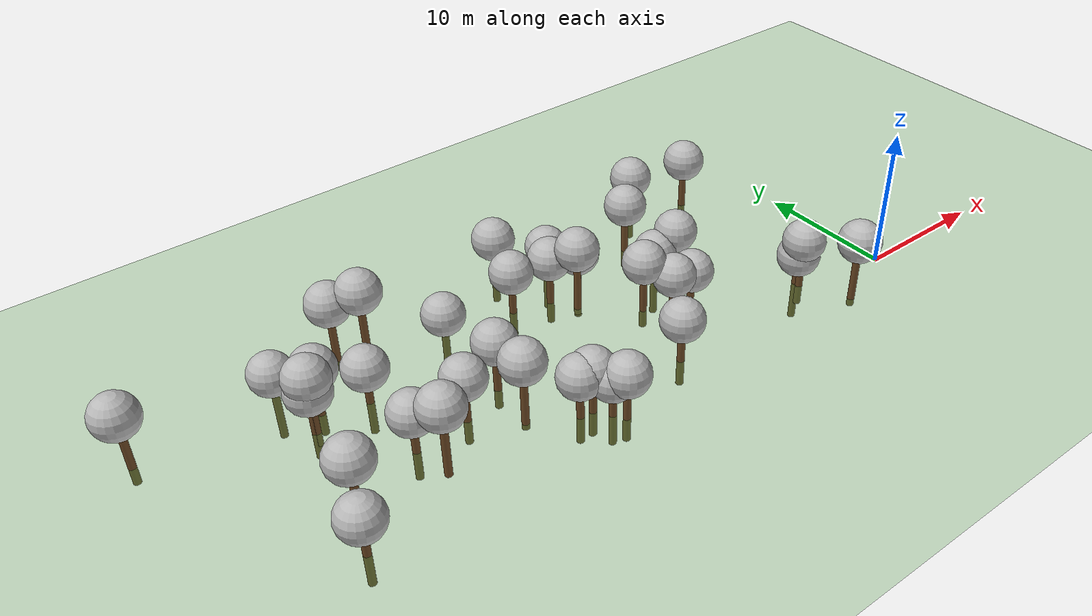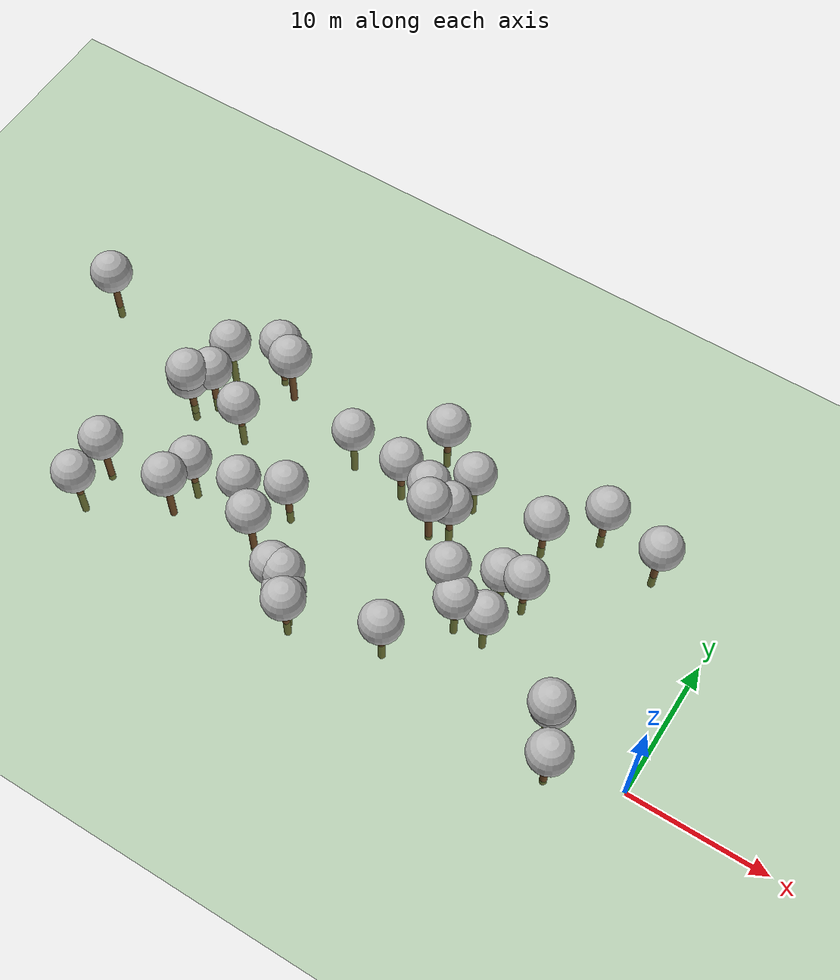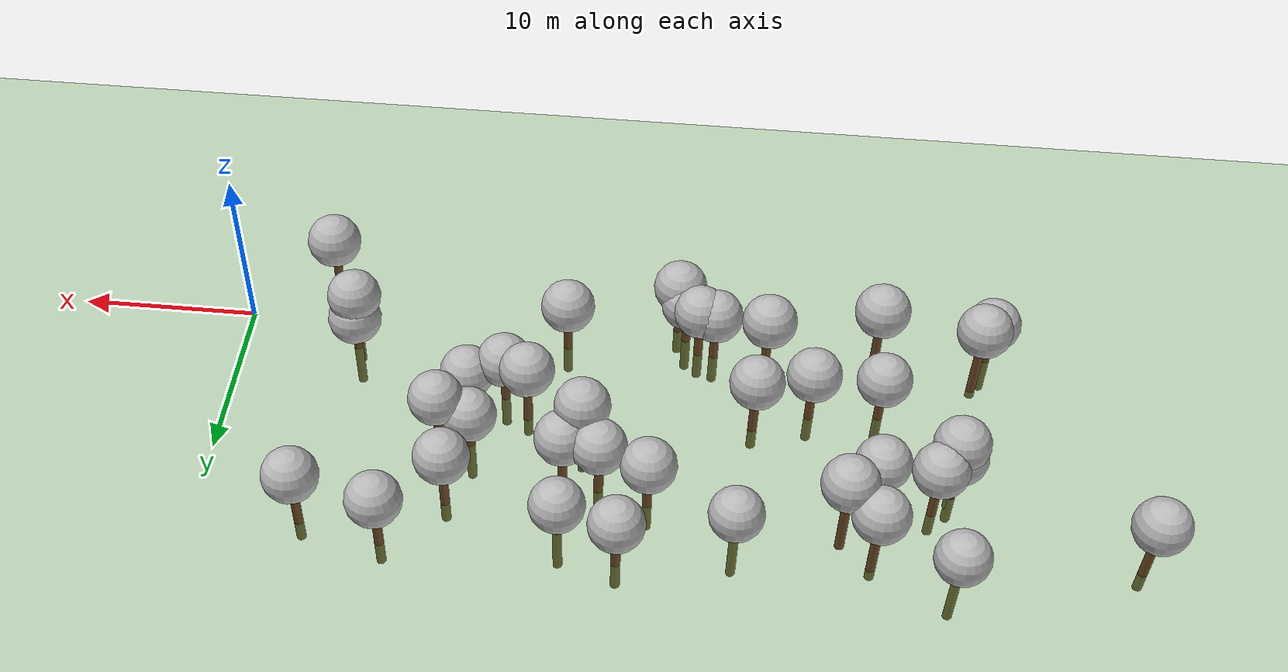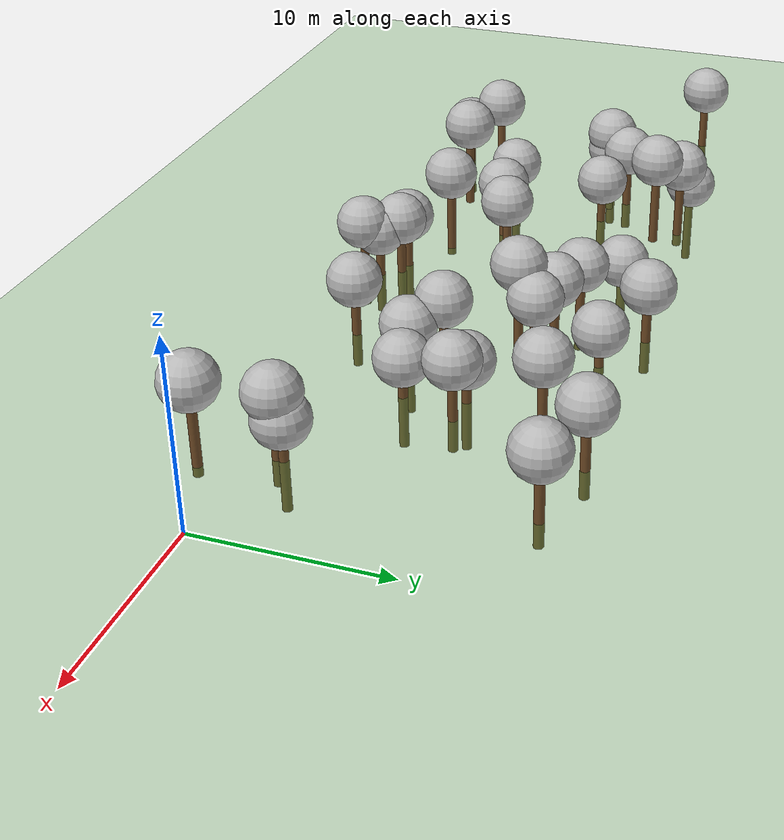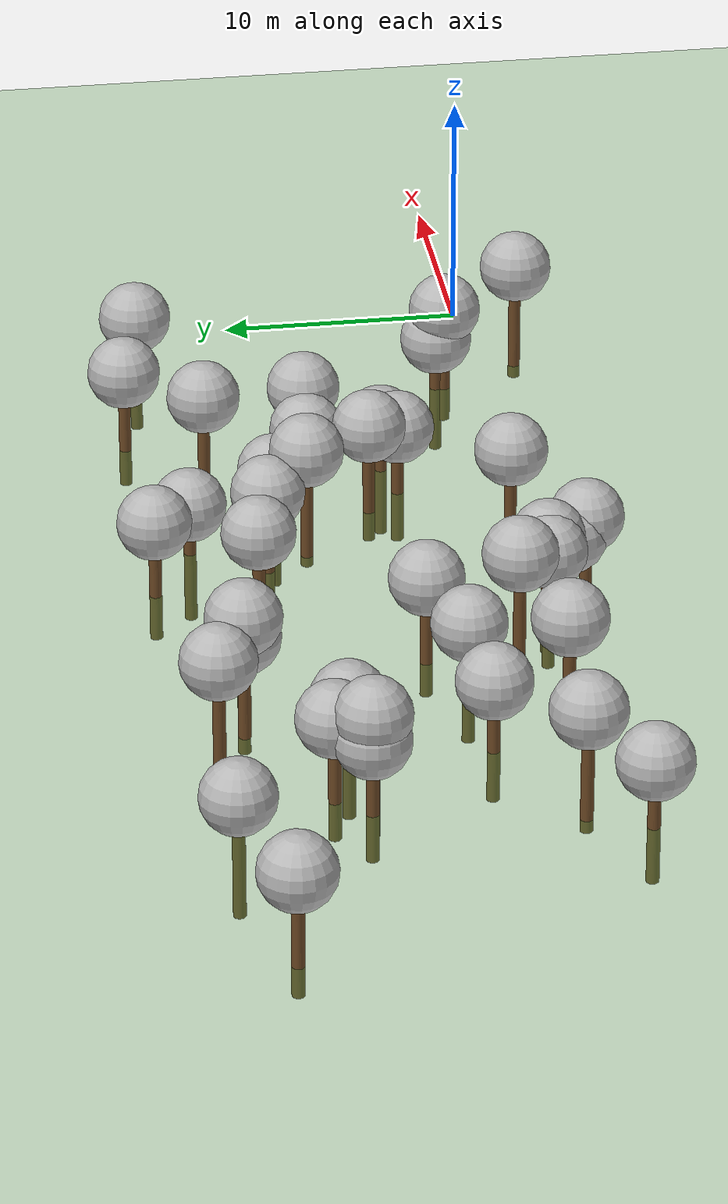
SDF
<sdf version="1.5">
 <world name="default">
  <model name="tree_simple498">
   <static>1</static>
   <link name="link">
    <pose>0 0 0.1 0 -0 0</pose>
    <collision name="collision_trunk">
     <pose>0 0 2 0 -0 0</pose>
     <geometry><cylinder><radius>0.25</radius><length>4</length></cylinder></geometry>
    </collision>
    <collision name="collision_treetop">
     <pose>0 0 5.2 0 -0 0</pose>
     <geometry><sphere><radius>1.5</radius></sphere></geometry>
    </collision>
    <visual name="trunk">
     <pose>0 0 2 0 -0 0</pose>
     <geometry><cylinder><radius>0.25</radius><length>4</length></cylinder></geometry>
     <material>
      <script>
       <uri>model://tree_simple/scripts</uri>
       <uri>model://tree_simple/materials/textures</uri>
       <name>TreeSimple/Trunk</name>
      </script>
     </material>
    </visual>
    <visual name="treetop">
     <pose>0 0 5.2 0 -0 0</pose>
     <geometry><sphere><radius>1.5</radius></sphere></geometry>
     <material>
      <script>
       <uri>model://tree_simple/scripts</uri>
       <uri>model://tree_simple/materials/textures</uri>
       <name>TreeSimple/Treetop</name>
      </script>
     </material>
    </visual>
   </link>
   <pose>-20.062069779 9.09254194943 -0.5727137692708224 0 -0 0</pose>
  </model>
  <model name="tree_simple488">
   <static>1</static>
   <link name="link">
    <pose>0 0 0.1 0 -0 0</pose>
    <collision name="collision_trunk">
     <pose>0 0 2 0 -0 0</pose>
     <geometry><cylinder><radius>0.25</radius><length>4</length></cylinder></geometry>
    </collision>
    <collision name="collision_treetop">
     <pose>0 0 5.2 0 -0 0</pose>
     <geometry><sphere><radius>1.5</radius></sphere></geometry>
    </collision>
    <visual name="trunk">
     <pose>0 0 2 0 -0 0</pose>
     <geometry><cylinder><radius>0.25</radius><length>4</length></cylinder></geometry>
     <material>
      <script>
       <uri>model://tree_simple/scripts</uri>
       <uri>model://tree_simple/materials/textures</uri>
       <name>TreeSimple/Trunk</name>
      </script>
     </material>
    </visual>
    <visual name="treetop">
     <pose>0 0 5.2 0 -0 0</pose>
     <geometry><sphere><radius>1.5</radius></sphere></geometry>
     <material>
      <script>
       <uri>model://tree_simple/scripts</uri>
       <uri>model://tree_simple/materials/textures</uri>
       <name>TreeSimple/Treetop</name>
      </script>
     </material>
    </visual>
   </link>
   <pose>-13.1215818691 12.435953241 -1.5400964836160544 0 -0 0</pose>
  </model>
  <model name="tree_simple460">
   <static>1</static>
   <link name="link">
    <pose>0 0 0.1 0 -0 0</pose>
    <collision name="collision_trunk">
     <pose>0 0 2 0 -0 0</pose>
     <geometry><cylinder><radius>0.25</radius><length>4</length></cylinder></geometry>
    </collision>
    <collision name="collision_treetop">
     <pose>0 0 5.2 0 -0 0</pose>
     <geometry><sphere><radius>1.5</radius></sphere></geometry>
    </collision>
    <visual name="trunk">
     <pose>0 0 2 0 -0 0</pose>
     <geometry><cylinder><radius>0.25</radius><length>4</length></cylinder></geometry>
     <material>
      <script>
       <uri>model://tree_simple/scripts</uri>
       <uri>model://tree_simple/materials/textures</uri>
       <name>TreeSimple/Trunk</name>
      </script>
     </material>
    </visual>
    <visual name="treetop">
     <pose>0 0 5.2 0 -0 0</pose>
     <geometry><sphere><radius>1.5</radius></sphere></geometry>
     <material>
      <script>
       <uri>model://tree_simple/scripts</uri>
       <uri>model://tree_simple/materials/textures</uri>
       <name>TreeSimple/Treetop</name>
      </script>
     </material>
    </visual>
   </link>
   <pose>-19.1263542494 10.273291852 -1.899627854762024 0 -0 0</pose>
  </model>
  <model name="tree_simple455">
   <static>1</static>
   <link name="link">
    <pose>0 0 0.1 0 -0 0</pose>
    <collision name="collision_trunk">
     <pose>0 0 2 0 -0 0</pose>
     <geometry><cylinder><radius>0.25</radius><length>4</length></cylinder></geometry>
    </collision>
    <collision name="collision_treetop">
     <pose>0 0 5.2 0 -0 0</pose>
     <geometry><sphere><radius>1.5</radius></sphere></geometry>
    </collision>
    <visual name="trunk">
     <pose>0 0 2 0 -0 0</pose>
     <geometry><cylinder><radius>0.25</radius><length>4</length></cylinder></geometry>
     <material>
      <script>
       <uri>model://tree_simple/scripts</uri>
       <uri>model://tree_simple/materials/textures</uri>
       <name>TreeSimple/Trunk</name>
      </script>
     </material>
    </visual>
    <visual name="treetop">
     <pose>0 0 5.2 0 -0 0</pose>
     <geometry><sphere><radius>1.5</radius></sphere></geometry>
     <material>
      <script>
       <uri>model://tree_simple/scripts</uri>
       <uri>model://tree_simple/materials/textures</uri>
       <name>TreeSimple/Treetop</name>
      </script>
     </material>
    </visual>
   </link>
   <pose>-32.1346913749 4.45623468988 -1.947715584335513 0 -0 0</pose>
  </model>
  <model name="tree_simple453">
   <static>1</static>
   <link name="link">
    <pose>0 0 0.1 0 -0 0</pose>
    <collision name="collision_trunk">
     <pose>0 0 2 0 -0 0</pose>
     <geometry><cylinder><radius>0.25</radius><length>4</length></cylinder></geometry>
    </collision>
    <collision name="collision_treetop">
     <pose>0 0 5.2 0 -0 0</pose>
     <geometry><sphere><radius>1.5</radius></sphere></geometry>
    </collision>
    <visual name="trunk">
     <pose>0 0 2 0 -0 0</pose>
     <geometry><cylinder><radius>0.25</radius><length>4</length></cylinder></geometry>
     <material>
      <script>
       <uri>model://tree_simple/scripts</uri>
       <uri>model://tree_simple/materials/textures</uri>
       <name>TreeSimple/Trunk</name>
      </script>
     </material>
    </visual>
    <visual name="treetop">
     <pose>0 0 5.2 0 -0 0</pose>
     <geometry><sphere><radius>1.5</radius></sphere></geometry>
     <material>
      <script>
       <uri>model://tree_simple/scripts</uri>
       <uri>model://tree_simple/materials/textures</uri>
       <name>TreeSimple/Treetop</name>
      </script>
     </material>
    </visual>
   </link>
   <pose>-12.135251061 8.19022164755 -1.936816225302408 0 -0 0</pose>
  </model>
  <model name="tree_simple448">
   <static>1</static>
   <link name="link">
    <pose>0 0 0.1 0 -0 0</pose>
    <collision name="collision_trunk">
     <pose>0 0 2 0 -0 0</pose>
     <geometry><cylinder><radius>0.25</radius><length>4</length></cylinder></geometry>
    </collision>
    <collision name="collision_treetop">
     <pose>0 0 5.2 0 -0 0</pose>
     <geometry><sphere><radius>1.5</radius></sphere></geometry>
    </collision>
    <visual name="trunk">
     <pose>0 0 2 0 -0 0</pose>
     <geometry><cylinder><radius>0.25</radius><length>4</length></cylinder></geometry>
     <material>
      <script>
       <uri>model://tree_simple/scripts</uri>
       <uri>model://tree_simple/materials/textures</uri>
       <name>TreeSimple/Trunk</name>
      </script>
     </material>
    </visual>
    <visual name="treetop">
     <pose>0 0 5.2 0 -0 0</pose>
     <geometry><sphere><radius>1.5</radius></sphere></geometry>
     <material>
      <script>
       <uri>model://tree_simple/scripts</uri>
       <uri>model://tree_simple/materials/textures</uri>
       <name>TreeSimple/Treetop</name>
      </script>
     </material>
    </visual>
   </link>
   <pose>-24.5519753109 -1.42546954192 -1.90080554179526 0 -0 0</pose>
  </model>
  <model name="tree_simple444">
   <static>1</static>
   <link name="link">
    <pose>0 0 0.1 0 -0 0</pose>
    <collision name="collision_trunk">
     <pose>0 0 2 0 -0 0</pose>
     <geometry><cylinder><radius>0.25</radius><length>4</length></cylinder></geometry>
    </collision>
    <collision name="collision_treetop">
     <pose>0 0 5.2 0 -0 0</pose>
     <geometry><sphere><radius>1.5</radius></sphere></geometry>
    </collision>
    <visual name="trunk">
     <pose>0 0 2 0 -0 0</pose>
     <geometry><cylinder><radius>0.25</radius><length>4</length></cylinder></geometry>
     <material>
      <script>
       <uri>model://tree_simple/scripts</uri>
       <uri>model://tree_simple/materials/textures</uri>
       <name>TreeSimple/Trunk</name>
      </script>
     </material>
    </visual>
    <visual name="treetop">
     <pose>0 0 5.2 0 -0 0</pose>
     <geometry><sphere><radius>1.5</radius></sphere></geometry>
     <material>
      <script>
       <uri>model://tree_simple/scripts</uri>
       <uri>model://tree_simple/materials/textures</uri>
       <name>TreeSimple/Treetop</name>
      </script>
     </material>
    </visual>
   </link>
   <pose>-23.7375888222 11.4825776361 -2.090950096863693 0 -0 0</pose>
  </model>
  <model name="tree_simple437">
   <static>1</static>
   <link name="link">
    <pose>0 0 0.1 0 -0 0</pose>
    <collision name="collision_trunk">
     <pose>0 0 2 0 -0 0</pose>
     <geometry><cylinder><radius>0.25</radius><length>4</length></cylinder></geometry>
    </collision>
    <collision name="collision_treetop">
     <pose>0 0 5.2 0 -0 0</pose>
     <geometry><sphere><radius>1.5</radius></sphere></geometry>
    </collision>
    <visual name="trunk">
     <pose>0 0 2 0 -0 0</pose>
     <geometry><cylinder><radius>0.25</radius><length>4</length></cylinder></geometry>
     <material>
      <script>
       <uri>model://tree_simple/scripts</uri>
       <uri>model://tree_simple/materials/textures</uri>
       <name>TreeSimple/Trunk</name>
      </script>
     </material>
    </visual>
    <visual name="treetop">
     <pose>0 0 5.2 0 -0 0</pose>
     <geometry><sphere><radius>1.5</radius></sphere></geometry>
     <material>
      <script>
       <uri>model://tree_simple/scripts</uri>
       <uri>model://tree_simple/materials/textures</uri>
       <name>TreeSimple/Treetop</name>
      </script>
     </material>
    </visual>
   </link>
   <pose>-39.7170299969 9.24665194356 -2.1444735147371587 0 -0 0</pose>
  </model>
  <model name="tree_simple424">
   <static>1</static>
   <link name="link">
    <pose>0 0 0.1 0 -0 0</pose>
    <collision name="collision_trunk">
     <pose>0 0 2 0 -0 0</pose>
     <geometry><cylinder><radius>0.25</radius><length>4</length></cylinder></geometry>
    </collision>
    <collision name="collision_treetop">
     <pose>0 0 5.2 0 -0 0</pose>
     <geometry><sphere><radius>1.5</radius></sphere></geometry>
    </collision>
    <visual name="trunk">
     <pose>0 0 2 0 -0 0</pose>
     <geometry><cylinder><radius>0.25</radius><length>4</length></cylinder></geometry>
     <material>
      <script>
       <uri>model://tree_simple/scripts</uri>
       <uri>model://tree_simple/materials/textures</uri>
       <name>TreeSimple/Trunk</name>
      </script>
     </material>
    </visual>
    <visual name="treetop">
     <pose>0 0 5.2 0 -0 0</pose>
     <geometry><sphere><radius>1.5</radius></sphere></geometry>
     <material>
      <script>
       <uri>model://tree_simple/scripts</uri>
       <uri>model://tree_simple/materials/textures</uri>
       <name>TreeSimple/Treetop</name>
      </script>
     </material>
    </visual>
   </link>
   <pose>-16.7770993139 6.12178979124 -1.4388467950934207 0 -0 0</pose>
  </model>
  <model name="tree_simple393">
   <static>1</static>
   <link name="link">
    <pose>0 0 0.1 0 -0 0</pose>
    <collision name="collision_trunk">
     <pose>0 0 2 0 -0 0</pose>
     <geometry><cylinder><radius>0.25</radius><length>4</length></cylinder></geometry>
    </collision>
    <collision name="collision_treetop">
     <pose>0 0 5.2 0 -0 0</pose>
     <geometry><sphere><radius>1.5</radius></sphere></geometry>
    </collision>
    <visual name="trunk">
     <pose>0 0 2 0 -0 0</pose>
     <geometry><cylinder><radius>0.25</radius><length>4</length></cylinder></geometry>
     <material>
      <script>
       <uri>model://tree_simple/scripts</uri>
       <uri>model://tree_simple/materials/textures</uri>
       <name>TreeSimple/Trunk</name>
      </script>
     </material>
    </visual>
    <visual name="treetop">
     <pose>0 0 5.2 0 -0 0</pose>
     <geometry><sphere><radius>1.5</radius></sphere></geometry>
     <material>
      <script>
       <uri>model://tree_simple/scripts</uri>
       <uri>model://tree_simple/materials/textures</uri>
       <name>TreeSimple/Treetop</name>
      </script>
     </material>
    </visual>
   </link>
   <pose>-19.2161378336 13.717868908 -3.142937712654496 0 -0 0</pose>
  </model>
  <model name="tree_simple383">
   <static>1</static>
   <link name="link">
    <pose>0 0 0.1 0 -0 0</pose>
    <collision name="collision_trunk">
     <pose>0 0 2 0 -0 0</pose>
     <geometry><cylinder><radius>0.25</radius><length>4</length></cylinder></geometry>
    </collision>
    <collision name="collision_treetop">
     <pose>0 0 5.2 0 -0 0</pose>
     <geometry><sphere><radius>1.5</radius></sphere></geometry>
    </collision>
    <visual name="trunk">
     <pose>0 0 2 0 -0 0</pose>
     <geometry><cylinder><radius>0.25</radius><length>4</length></cylinder></geometry>
     <material>
      <script>
       <uri>model://tree_simple/scripts</uri>
       <uri>model://tree_simple/materials/textures</uri>
       <name>TreeSimple/Trunk</name>
      </script>
     </material>
    </visual>
    <visual name="treetop">
     <pose>0 0 5.2 0 -0 0</pose>
     <geometry><sphere><radius>1.5</radius></sphere></geometry>
     <material>
      <script>
       <uri>model://tree_simple/scripts</uri>
       <uri>model://tree_simple/materials/textures</uri>
       <name>TreeSimple/Treetop</name>
      </script>
     </material>
    </visual>
   </link>
   <pose>-39.6589333601 9.20891740709 -1.109755845795116 0 -0 0</pose>
  </model>
  <model name="tree_simple360">
   <static>1</static>
   <link name="link">
    <pose>0 0 0.1 0 -0 0</pose>
    <collision name="collision_trunk">
     <pose>0 0 2 0 -0 0</pose>
     <geometry><cylinder><radius>0.25</radius><length>4</length></cylinder></geometry>
    </collision>
    <collision name="collision_treetop">
     <pose>0 0 5.2 0 -0 0</pose>
     <geometry><sphere><radius>1.5</radius></sphere></geometry>
    </collision>
    <visual name="trunk">
     <pose>0 0 2 0 -0 0</pose>
     <geometry><cylinder><radius>0.25</radius><length>4</length></cylinder></geometry>
     <material>
      <script>
       <uri>model://tree_simple/scripts</uri>
       <uri>model://tree_simple/materials/textures</uri>
       <name>TreeSimple/Trunk</name>
      </script>
     </material>
    </visual>
    <visual name="treetop">
     <pose>0 0 5.2 0 -0 0</pose>
     <geometry><sphere><radius>1.5</radius></sphere></geometry>
     <material>
      <script>
       <uri>model://tree_simple/scripts</uri>
       <uri>model://tree_simple/materials/textures</uri>
       <name>TreeSimple/Treetop</name>
      </script>
     </material>
    </visual>
   </link>
   <pose>-13.8761955988 8.30702560736 -2.928211109196675 0 -0 0</pose>
  </model>
  <model name="tree_simple338">
   <static>1</static>
   <link name="link">
    <pose>0 0 0.1 0 -0 0</pose>
    <collision name="collision_trunk">
     <pose>0 0 2 0 -0 0</pose>
     <geometry><cylinder><radius>0.25</radius><length>4</length></cylinder></geometry>
    </collision>
    <collision name="collision_treetop">
     <pose>0 0 5.2 0 -0 0</pose>
     <geometry><sphere><radius>1.5</radius></sphere></geometry>
    </collision>
    <visual name="trunk">
     <pose>0 0 2 0 -0 0</pose>
     <geometry><cylinder><radius>0.25</radius><length>4</length></cylinder></geometry>
     <material>
      <script>
       <uri>model://tree_simple/scripts</uri>
       <uri>model://tree_simple/materials/textures</uri>
       <name>TreeSimple/Trunk</name>
      </script>
     </material>
    </visual>
    <visual name="treetop">
     <pose>0 0 5.2 0 -0 0</pose>
     <geometry><sphere><radius>1.5</radius></sphere></geometry>
     <material>
      <script>
       <uri>model://tree_simple/scripts</uri>
       <uri>model://tree_simple/materials/textures</uri>
       <name>TreeSimple/Treetop</name>
      </script>
     </material>
    </visual>
   </link>
   <pose>-22.4236352143 15.4465495723 -2.061868776338593 0 -0 0</pose>
  </model>
  <model name="tree_simple333">
   <static>1</static>
   <link name="link">
    <pose>0 0 0.1 0 -0 0</pose>
    <collision name="collision_trunk">
     <pose>0 0 2 0 -0 0</pose>
     <geometry><cylinder><radius>0.25</radius><length>4</length></cylinder></geometry>
    </collision>
    <collision name="collision_treetop">
     <pose>0 0 5.2 0 -0 0</pose>
     <geometry><sphere><radius>1.5</radius></sphere></geometry>
    </collision>
    <visual name="trunk">
     <pose>0 0 2 0 -0 0</pose>
     <geometry><cylinder><radius>0.25</radius><length>4</length></cylinder></geometry>
     <material>
      <script>
       <uri>model://tree_simple/scripts</uri>
       <uri>model://tree_simple/materials/textures</uri>
       <name>TreeSimple/Trunk</name>
      </script>
     </material>
    </visual>
    <visual name="treetop">
     <pose>0 0 5.2 0 -0 0</pose>
     <geometry><sphere><radius>1.5</radius></sphere></geometry>
     <material>
      <script>
       <uri>model://tree_simple/scripts</uri>
       <uri>model://tree_simple/materials/textures</uri>
       <name>TreeSimple/Treetop</name>
      </script>
     </material>
    </visual>
   </link>
   <pose>-39.9457212117 14.2708629915 -4.0 0 -0 0</pose>
  </model>
  <model name="tree_simple289">
   <static>1</static>
   <link name="link">
    <pose>0 0 0.1 0 -0 0</pose>
    <collision name="collision_trunk">
     <pose>0 0 2 0 -0 0</pose>
     <geometry><cylinder><radius>0.25</radius><length>4</length></cylinder></geometry>
    </collision>
    <collision name="collision_treetop">
     <pose>0 0 5.2 0 -0 0</pose>
     <geometry><sphere><radius>1.5</radius></sphere></geometry>
    </collision>
    <visual name="trunk">
     <pose>0 0 2 0 -0 0</pose>
     <geometry><cylinder><radius>0.25</radius><length>4</length></cylinder></geometry>
     <material>
      <script>
       <uri>model://tree_simple/scripts</uri>
       <uri>model://tree_simple/materials/textures</uri>
       <name>TreeSimple/Trunk</name>
      </script>
     </material>
    </visual>
    <visual name="treetop">
     <pose>0 0 5.2 0 -0 0</pose>
     <geometry><sphere><radius>1.5</radius></sphere></geometry>
     <material>
      <script>
       <uri>model://tree_simple/scripts</uri>
       <uri>model://tree_simple/materials/textures</uri>
       <name>TreeSimple/Treetop</name>
      </script>
     </material>
    </visual>
   </link>
   <pose>-35.9302757768 4.10324936235 -2.2958135675298035 0 -0 0</pose>
  </model>
  <model name="tree_simple284">
   <static>1</static>
   <link name="link">
    <pose>0 0 0.1 0 -0 0</pose>
    <collision name="collision_trunk">
     <pose>0 0 2 0 -0 0</pose>
     <geometry><cylinder><radius>0.25</radius><length>4</length></cylinder></geometry>
    </collision>
    <collision name="collision_treetop">
     <pose>0 0 5.2 0 -0 0</pose>
     <geometry><sphere><radius>1.5</radius></sphere></geometry>
    </collision>
    <visual name="trunk">
     <pose>0 0 2 0 -0 0</pose>
     <geometry><cylinder><radius>0.25</radius><length>4</length></cylinder></geometry>
     <material>
      <script>
       <uri>model://tree_simple/scripts</uri>
       <uri>model://tree_simple/materials/textures</uri>
       <name>TreeSimple/Trunk</name>
      </script>
     </material>
    </visual>
    <visual name="treetop">
     <pose>0 0 5.2 0 -0 0</pose>
     <geometry><sphere><radius>1.5</radius></sphere></geometry>
     <material>
      <script>
       <uri>model://tree_simple/scripts</uri>
       <uri>model://tree_simple/materials/textures</uri>
       <name>TreeSimple/Treetop</name>
      </script>
     </material>
    </visual>
   </link>
   <pose>-18.3910783374 0.559962709575 -2.076386840364748 0 -0 0</pose>
  </model>
  <model name="tree_simple282">
   <static>1</static>
   <link name="link">
    <pose>0 0 0.1 0 -0 0</pose>
    <collision name="collision_trunk">
     <pose>0 0 2 0 -0 0</pose>
     <geometry><cylinder><radius>0.25</radius><length>4</length></cylinder></geometry>
    </collision>
    <collision name="collision_treetop">
     <pose>0 0 5.2 0 -0 0</pose>
     <geometry><sphere><radius>1.5</radius></sphere></geometry>
    </collision>
    <visual name="trunk">
     <pose>0 0 2 0 -0 0</pose>
     <geometry><cylinder><radius>0.25</radius><length>4</length></cylinder></geometry>
     <material>
      <script>
       <uri>model://tree_simple/scripts</uri>
       <uri>model://tree_simple/materials/textures</uri>
       <name>TreeSimple/Trunk</name>
      </script>
     </material>
    </visual>
    <visual name="treetop">
     <pose>0 0 5.2 0 -0 0</pose>
     <geometry><sphere><radius>1.5</radius></sphere></geometry>
     <material>
      <script>
       <uri>model://tree_simple/scripts</uri>
       <uri>model://tree_simple/materials/textures</uri>
       <name>TreeSimple/Treetop</name>
      </script>
     </material>
    </visual>
   </link>
   <pose>-10.116665752 15.3935200089 -1.744230696741878 0 -0 0</pose>
  </model>
  <model name="tree_simple279">
   <static>1</static>
   <link name="link">
    <pose>0 0 0.1 0 -0 0</pose>
    <collision name="collision_trunk">
     <pose>0 0 2 0 -0 0</pose>
     <geometry><cylinder><radius>0.25</radius><length>4</length></cylinder></geometry>
    </collision>
    <collision name="collision_treetop">
     <pose>0 0 5.2 0 -0 0</pose>
     <geometry><sphere><radius>1.5</radius></sphere></geometry>
    </collision>
    <visual name="trunk">
     <pose>0 0 2 0 -0 0</pose>
     <geometry><cylinder><radius>0.25</radius><length>4</length></cylinder></geometry>
     <material>
      <script>
       <uri>model://tree_simple/scripts</uri>
       <uri>model://tree_simple/materials/textures</uri>
       <name>TreeSimple/Trunk</name>
      </script>
     </material>
    </visual>
    <visual name="treetop">
     <pose>0 0 5.2 0 -0 0</pose>
     <geometry><sphere><radius>1.5</radius></sphere></geometry>
     <material>
      <script>
       <uri>model://tree_simple/scripts</uri>
       <uri>model://tree_simple/materials/textures</uri>
       <name>TreeSimple/Treetop</name>
      </script>
     </material>
    </visual>
   </link>
   <pose>-25.0449823603 -0.682470499347 -2.4700505996115525 0 -0 0</pose>
  </model>
  <model name="tree_simple252">
   <static>1</static>
   <link name="link">
    <pose>0 0 0.1 0 -0 0</pose>
    <collision name="collision_trunk">
     <pose>0 0 2 0 -0 0</pose>
     <geometry><cylinder><radius>0.25</radius><length>4</length></cylinder></geometry>
    </collision>
    <collision name="collision_treetop">
     <pose>0 0 5.2 0 -0 0</pose>
     <geometry><sphere><radius>1.5</radius></sphere></geometry>
    </collision>
    <visual name="trunk">
     <pose>0 0 2 0 -0 0</pose>
     <geometry><cylinder><radius>0.25</radius><length>4</length></cylinder></geometry>
     <material>
      <script>
       <uri>model://tree_simple/scripts</uri>
       <uri>model://tree_simple/materials/textures</uri>
       <name>TreeSimple/Trunk</name>
      </script>
     </material>
    </visual>
    <visual name="treetop">
     <pose>0 0 5.2 0 -0 0</pose>
     <geometry><sphere><radius>1.5</radius></sphere></geometry>
     <material>
      <script>
       <uri>model://tree_simple/scripts</uri>
       <uri>model://tree_simple/materials/textures</uri>
       <name>TreeSimple/Treetop</name>
      </script>
     </material>
    </visual>
   </link>
   <pose>-49.2857495086 13.2768548842 -1.3896792811846979 0 -0 0</pose>
  </model>
  <model name="tree_simple245">
   <static>1</static>
   <link name="link">
    <pose>0 0 0.1 0 -0 0</pose>
    <collision name="collision_trunk">
     <pose>0 0 2 0 -0 0</pose>
     <geometry><cylinder><radius>0.25</radius><length>4</length></cylinder></geometry>
    </collision>
    <collision name="collision_treetop">
     <pose>0 0 5.2 0 -0 0</pose>
     <geometry><sphere><radius>1.5</radius></sphere></geometry>
    </collision>
    <visual name="trunk">
     <pose>0 0 2 0 -0 0</pose>
     <geometry><cylinder><radius>0.25</radius><length>4</length></cylinder></geometry>
     <material>
      <script>
       <uri>model://tree_simple/scripts</uri>
       <uri>model://tree_simple/materials/textures</uri>
       <name>TreeSimple/Trunk</name>
      </script>
     </material>
    </visual>
    <visual name="treetop">
     <pose>0 0 5.2 0 -0 0</pose>
     <geometry><sphere><radius>1.5</radius></sphere></geometry>
     <material>
      <script>
       <uri>model://tree_simple/scripts</uri>
       <uri>model://tree_simple/materials/textures</uri>
       <name>TreeSimple/Treetop</name>
      </script>
     </material>
    </visual>
   </link>
   <pose>-25.7973722527 0.315231770046 -2.0016380816273003 0 -0 0</pose>
  </model>
  <model name="tree_simple231">
   <static>1</static>
   <link name="link">
    <pose>0 0 0.1 0 -0 0</pose>
    <collision name="collision_trunk">
     <pose>0 0 2 0 -0 0</pose>
     <geometry><cylinder><radius>0.25</radius><length>4</length></cylinder></geometry>
    </collision>
    <collision name="collision_treetop">
     <pose>0 0 5.2 0 -0 0</pose>
     <geometry><sphere><radius>1.5</radius></sphere></geometry>
    </collision>
    <visual name="trunk">
     <pose>0 0 2 0 -0 0</pose>
     <geometry><cylinder><radius>0.25</radius><length>4</length></cylinder></geometry>
     <material>
      <script>
       <uri>model://tree_simple/scripts</uri>
       <uri>model://tree_simple/materials/textures</uri>
       <name>TreeSimple/Trunk</name>
      </script>
     </material>
    </visual>
    <visual name="treetop">
     <pose>0 0 5.2 0 -0 0</pose>
     <geometry><sphere><radius>1.5</radius></sphere></geometry>
     <material>
      <script>
       <uri>model://tree_simple/scripts</uri>
       <uri>model://tree_simple/materials/textures</uri>
       <name>TreeSimple/Treetop</name>
      </script>
     </material>
    </visual>
   </link>
   <pose>-35.8338732543 9.59486776234 -2.6369395235057946 0 -0 0</pose>
  </model>
  <model name="tree_simple228">
   <static>1</static>
   <link name="link">
    <pose>0 0 0.1 0 -0 0</pose>
    <collision name="collision_trunk">
     <pose>0 0 2 0 -0 0</pose>
     <geometry><cylinder><radius>0.25</radius><length>4</length></cylinder></geometry>
    </collision>
    <collision name="collision_treetop">
     <pose>0 0 5.2 0 -0 0</pose>
     <geometry><sphere><radius>1.5</radius></sphere></geometry>
    </collision>
    <visual name="trunk">
     <pose>0 0 2 0 -0 0</pose>
     <geometry><cylinder><radius>0.25</radius><length>4</length></cylinder></geometry>
     <material>
      <script>
       <uri>model://tree_simple/scripts</uri>
       <uri>model://tree_simple/materials/textures</uri>
       <name>TreeSimple/Trunk</name>
      </script>
     </material>
    </visual>
    <visual name="treetop">
     <pose>0 0 5.2 0 -0 0</pose>
     <geometry><sphere><radius>1.5</radius></sphere></geometry>
     <material>
      <script>
       <uri>model://tree_simple/scripts</uri>
       <uri>model://tree_simple/materials/textures</uri>
       <name>TreeSimple/Treetop</name>
      </script>
     </material>
    </visual>
   </link>
   <pose>-28.4416918888 12.679152397 -4.0 0 -0 0</pose>
  </model>
  <model name="tree_simple226">
   <static>1</static>
   <link name="link">
    <pose>0 0 0.1 0 -0 0</pose>
    <collision name="collision_trunk">
     <pose>0 0 2 0 -0 0</pose>
     <geometry><cylinder><radius>0.25</radius><length>4</length></cylinder></geometry>
    </collision>
    <collision name="collision_treetop">
     <pose>0 0 5.2 0 -0 0</pose>
     <geometry><sphere><radius>1.5</radius></sphere></geometry>
    </collision>
    <visual name="trunk">
     <pose>0 0 2 0 -0 0</pose>
     <geometry><cylinder><radius>0.25</radius><length>4</length></cylinder></geometry>
     <material>
      <script>
       <uri>model://tree_simple/scripts</uri>
       <uri>model://tree_simple/materials/textures</uri>
       <name>TreeSimple/Trunk</name>
      </script>
     </material>
    </visual>
    <visual name="treetop">
     <pose>0 0 5.2 0 -0 0</pose>
     <geometry><sphere><radius>1.5</radius></sphere></geometry>
     <material>
      <script>
       <uri>model://tree_simple/scripts</uri>
       <uri>model://tree_simple/materials/textures</uri>
       <name>TreeSimple/Treetop</name>
      </script>
     </material>
    </visual>
   </link>
   <pose>-15.3498793375 4.7340721764 -2.3395287395939532 0 -0 0</pose>
  </model>
  <model name="tree_simple218">
   <static>1</static>
   <link name="link">
    <pose>0 0 0.1 0 -0 0</pose>
    <collision name="collision_trunk">
     <pose>0 0 2 0 -0 0</pose>
     <geometry><cylinder><radius>0.25</radius><length>4</length></cylinder></geometry>
    </collision>
    <collision name="collision_treetop">
     <pose>0 0 5.2 0 -0 0</pose>
     <geometry><sphere><radius>1.5</radius></sphere></geometry>
    </collision>
    <visual name="trunk">
     <pose>0 0 2 0 -0 0</pose>
     <geometry><cylinder><radius>0.25</radius><length>4</length></cylinder></geometry>
     <material>
      <script>
       <uri>model://tree_simple/scripts</uri>
       <uri>model://tree_simple/materials/textures</uri>
       <name>TreeSimple/Trunk</name>
      </script>
     </material>
    </visual>
    <visual name="treetop">
     <pose>0 0 5.2 0 -0 0</pose>
     <geometry><sphere><radius>1.5</radius></sphere></geometry>
     <material>
      <script>
       <uri>model://tree_simple/scripts</uri>
       <uri>model://tree_simple/materials/textures</uri>
       <name>TreeSimple/Treetop</name>
      </script>
     </material>
    </visual>
   </link>
   <pose>-35.4441673734 14.4296379782 -0.8655681028894266 0 -0 0</pose>
  </model>
  <model name="tree_simple209">
   <static>1</static>
   <link name="link">
    <pose>0 0 0.1 0 -0 0</pose>
    <collision name="collision_trunk">
     <pose>0 0 2 0 -0 0</pose>
     <geometry><cylinder><radius>0.25</radius><length>4</length></cylinder></geometry>
    </collision>
    <collision name="collision_treetop">
     <pose>0 0 5.2 0 -0 0</pose>
     <geometry><sphere><radius>1.5</radius></sphere></geometry>
    </collision>
    <visual name="trunk">
     <pose>0 0 2 0 -0 0</pose>
     <geometry><cylinder><radius>0.25</radius><length>4</length></cylinder></geometry>
     <material>
      <script>
       <uri>model://tree_simple/scripts</uri>
       <uri>model://tree_simple/materials/textures</uri>
       <name>TreeSimple/Trunk</name>
      </script>
     </material>
    </visual>
    <visual name="treetop">
     <pose>0 0 5.2 0 -0 0</pose>
     <geometry><sphere><radius>1.5</radius></sphere></geometry>
     <material>
      <script>
       <uri>model://tree_simple/scripts</uri>
       <uri>model://tree_simple/materials/textures</uri>
       <name>TreeSimple/Treetop</name>
      </script>
     </material>
    </visual>
   </link>
   <pose>-33.8233046725 13.2827932197 -0.0 0 -0 0</pose>
  </model>
  <model name="tree_simple199">
   <static>1</static>
   <link name="link">
    <pose>0 0 0.1 0 -0 0</pose>
    <collision name="collision_trunk">
     <pose>0 0 2 0 -0 0</pose>
     <geometry><cylinder><radius>0.25</radius><length>4</length></cylinder></geometry>
    </collision>
    <collision name="collision_treetop">
     <pose>0 0 5.2 0 -0 0</pose>
     <geometry><sphere><radius>1.5</radius></sphere></geometry>
    </collision>
    <visual name="trunk">
     <pose>0 0 2 0 -0 0</pose>
     <geometry><cylinder><radius>0.25</radius><length>4</length></cylinder></geometry>
     <material>
      <script>
       <uri>model://tree_simple/scripts</uri>
       <uri>model://tree_simple/materials/textures</uri>
       <name>TreeSimple/Trunk</name>
      </script>
     </material>
    </visual>
    <visual name="treetop">
     <pose>0 0 5.2 0 -0 0</pose>
     <geometry><sphere><radius>1.5</radius></sphere></geometry>
     <material>
      <script>
       <uri>model://tree_simple/scripts</uri>
       <uri>model://tree_simple/materials/textures</uri>
       <name>TreeSimple/Treetop</name>
      </script>
     </material>
    </visual>
   </link>
   <pose>-38.6601694544 10.5136228042 -1.758074922207244 0 -0 0</pose>
  </model>
  <model name="tree_simple187">
   <static>1</static>
   <link name="link">
    <pose>0 0 0.1 0 -0 0</pose>
    <collision name="collision_trunk">
     <pose>0 0 2 0 -0 0</pose>
     <geometry><cylinder><radius>0.25</radius><length>4</length></cylinder></geometry>
    </collision>
    <collision name="collision_treetop">
     <pose>0 0 5.2 0 -0 0</pose>
     <geometry><sphere><radius>1.5</radius></sphere></geometry>
    </collision>
    <visual name="trunk">
     <pose>0 0 2 0 -0 0</pose>
     <geometry><cylinder><radius>0.25</radius><length>4</length></cylinder></geometry>
     <material>
      <script>
       <uri>model://tree_simple/scripts</uri>
       <uri>model://tree_simple/materials/textures</uri>
       <name>TreeSimple/Trunk</name>
      </script>
     </material>
    </visual>
    <visual name="treetop">
     <pose>0 0 5.2 0 -0 0</pose>
     <geometry><sphere><radius>1.5</radius></sphere></geometry>
     <material>
      <script>
       <uri>model://tree_simple/scripts</uri>
       <uri>model://tree_simple/materials/textures</uri>
       <name>TreeSimple/Treetop</name>
      </script>
     </material>
    </visual>
   </link>
   <pose>-6.45553635196 1.79140972094 -3.0174961353647194 0 -0 0</pose>
  </model>
  <model name="tree_simple165">
   <static>1</static>
   <link name="link">
    <pose>0 0 0.1 0 -0 0</pose>
    <collision name="collision_trunk">
     <pose>0 0 2 0 -0 0</pose>
     <geometry><cylinder><radius>0.25</radius><length>4</length></cylinder></geometry>
    </collision>
    <collision name="collision_treetop">
     <pose>0 0 5.2 0 -0 0</pose>
     <geometry><sphere><radius>1.5</radius></sphere></geometry>
    </collision>
    <visual name="trunk">
     <pose>0 0 2 0 -0 0</pose>
     <geometry><cylinder><radius>0.25</radius><length>4</length></cylinder></geometry>
     <material>
      <script>
       <uri>model://tree_simple/scripts</uri>
       <uri>model://tree_simple/materials/textures</uri>
       <name>TreeSimple/Trunk</name>
      </script>
     </material>
    </visual>
    <visual name="treetop">
     <pose>0 0 5.2 0 -0 0</pose>
     <geometry><sphere><radius>1.5</radius></sphere></geometry>
     <material>
      <script>
       <uri>model://tree_simple/scripts</uri>
       <uri>model://tree_simple/materials/textures</uri>
       <name>TreeSimple/Treetop</name>
      </script>
     </material>
    </visual>
   </link>
   <pose>-6.476660544 1.43780692284 -1.6327507488641289 0 -0 0</pose>
  </model>
  <model name="tree_simple163">
   <static>1</static>
   <link name="link">
    <pose>0 0 0.1 0 -0 0</pose>
    <collision name="collision_trunk">
     <pose>0 0 2 0 -0 0</pose>
     <geometry><cylinder><radius>0.25</radius><length>4</length></cylinder></geometry>
    </collision>
    <collision name="collision_treetop">
     <pose>0 0 5.2 0 -0 0</pose>
     <geometry><sphere><radius>1.5</radius></sphere></geometry>
    </collision>
    <visual name="trunk">
     <pose>0 0 2 0 -0 0</pose>
     <geometry><cylinder><radius>0.25</radius><length>4</length></cylinder></geometry>
     <material>
      <script>
       <uri>model://tree_simple/scripts</uri>
       <uri>model://tree_simple/materials/textures</uri>
       <name>TreeSimple/Trunk</name>
      </script>
     </material>
    </visual>
    <visual name="treetop">
     <pose>0 0 5.2 0 -0 0</pose>
     <geometry><sphere><radius>1.5</radius></sphere></geometry>
     <material>
      <script>
       <uri>model://tree_simple/scripts</uri>
       <uri>model://tree_simple/materials/textures</uri>
       <name>TreeSimple/Treetop</name>
      </script>
     </material>
    </visual>
   </link>
   <pose>-21.1018337127 10.7784018303 -1.7670257787740469 0 -0 0</pose>
  </model>
  <model name="tree_simple162">
   <static>1</static>
   <link name="link">
    <pose>0 0 0.1 0 -0 0</pose>
    <collision name="collision_trunk">
     <pose>0 0 2 0 -0 0</pose>
     <geometry><cylinder><radius>0.25</radius><length>4</length></cylinder></geometry>
    </collision>
    <collision name="collision_treetop">
     <pose>0 0 5.2 0 -0 0</pose>
     <geometry><sphere><radius>1.5</radius></sphere></geometry>
    </collision>
    <visual name="trunk">
     <pose>0 0 2 0 -0 0</pose>
     <geometry><cylinder><radius>0.25</radius><length>4</length></cylinder></geometry>
     <material>
      <script>
       <uri>model://tree_simple/scripts</uri>
       <uri>model://tree_simple/materials/textures</uri>
       <name>TreeSimple/Trunk</name>
      </script>
     </material>
    </visual>
    <visual name="treetop">
     <pose>0 0 5.2 0 -0 0</pose>
     <geometry><sphere><radius>1.5</radius></sphere></geometry>
     <material>
      <script>
       <uri>model://tree_simple/scripts</uri>
       <uri>model://tree_simple/materials/textures</uri>
       <name>TreeSimple/Treetop</name>
      </script>
     </material>
    </visual>
   </link>
   <pose>-29.0785466271 5.63251358266 -1.594166031196951 0 -0 0</pose>
  </model>
  <model name="tree_simple158">
   <static>1</static>
   <link name="link">
    <pose>0 0 0.1 0 -0 0</pose>
    <collision name="collision_trunk">
     <pose>0 0 2 0 -0 0</pose>
     <geometry><cylinder><radius>0.25</radius><length>4</length></cylinder></geometry>
    </collision>
    <collision name="collision_treetop">
     <pose>0 0 5.2 0 -0 0</pose>
     <geometry><sphere><radius>1.5</radius></sphere></geometry>
    </collision>
    <visual name="trunk">
     <pose>0 0 2 0 -0 0</pose>
     <geometry><cylinder><radius>0.25</radius><length>4</length></cylinder></geometry>
     <material>
      <script>
       <uri>model://tree_simple/scripts</uri>
       <uri>model://tree_simple/materials/textures</uri>
       <name>TreeSimple/Trunk</name>
      </script>
     </material>
    </visual>
    <visual name="treetop">
     <pose>0 0 5.2 0 -0 0</pose>
     <geometry><sphere><radius>1.5</radius></sphere></geometry>
     <material>
      <script>
       <uri>model://tree_simple/scripts</uri>
       <uri>model://tree_simple/materials/textures</uri>
       <name>TreeSimple/Treetop</name>
      </script>
     </material>
    </visual>
   </link>
   <pose>-5.6810181288 14.4728525014 -1.5056962265394347 0 -0 0</pose>
  </model>
  <model name="tree_simple135">
   <static>1</static>
   <link name="link">
    <pose>0 0 0.1 0 -0 0</pose>
    <collision name="collision_trunk">
     <pose>0 0 2 0 -0 0</pose>
     <geometry><cylinder><radius>0.25</radius><length>4</length></cylinder></geometry>
    </collision>
    <collision name="collision_treetop">
     <pose>0 0 5.2 0 -0 0</pose>
     <geometry><sphere><radius>1.5</radius></sphere></geometry>
    </collision>
    <visual name="trunk">
     <pose>0 0 2 0 -0 0</pose>
     <geometry><cylinder><radius>0.25</radius><length>4</length></cylinder></geometry>
     <material>
      <script>
       <uri>model://tree_simple/scripts</uri>
       <uri>model://tree_simple/materials/textures</uri>
       <name>TreeSimple/Trunk</name>
      </script>
     </material>
    </visual>
    <visual name="treetop">
     <pose>0 0 5.2 0 -0 0</pose>
     <geometry><sphere><radius>1.5</radius></sphere></geometry>
     <material>
      <script>
       <uri>model://tree_simple/scripts</uri>
       <uri>model://tree_simple/materials/textures</uri>
       <name>TreeSimple/Treetop</name>
      </script>
     </material>
    </visual>
   </link>
   <pose>-29.5483415339 2.06641345063 -0.5539172289707903 0 -0 0</pose>
  </model>
  <model name="tree_simple121">
   <static>1</static>
   <link name="link">
    <pose>0 0 0.1 0 -0 0</pose>
    <collision name="collision_trunk">
     <pose>0 0 2 0 -0 0</pose>
     <geometry><cylinder><radius>0.25</radius><length>4</length></cylinder></geometry>
    </collision>
    <collision name="collision_treetop">
     <pose>0 0 5.2 0 -0 0</pose>
     <geometry><sphere><radius>1.5</radius></sphere></geometry>
    </collision>
    <visual name="trunk">
     <pose>0 0 2 0 -0 0</pose>
     <geometry><cylinder><radius>0.25</radius><length>4</length></cylinder></geometry>
     <material>
      <script>
       <uri>model://tree_simple/scripts</uri>
       <uri>model://tree_simple/materials/textures</uri>
       <name>TreeSimple/Trunk</name>
      </script>
     </material>
    </visual>
    <visual name="treetop">
     <pose>0 0 5.2 0 -0 0</pose>
     <geometry><sphere><radius>1.5</radius></sphere></geometry>
     <material>
      <script>
       <uri>model://tree_simple/scripts</uri>
       <uri>model://tree_simple/materials/textures</uri>
       <name>TreeSimple/Treetop</name>
      </script>
     </material>
    </visual>
   </link>
   <pose>-26.6760124136 0.407106369334 -2.1556177539083694 0 -0 0</pose>
  </model>
  <model name="tree_simple105">
   <static>1</static>
   <link name="link">
    <pose>0 0 0.1 0 -0 0</pose>
    <collision name="collision_trunk">
     <pose>0 0 2 0 -0 0</pose>
     <geometry><cylinder><radius>0.25</radius><length>4</length></cylinder></geometry>
    </collision>
    <collision name="collision_treetop">
     <pose>0 0 5.2 0 -0 0</pose>
     <geometry><sphere><radius>1.5</radius></sphere></geometry>
    </collision>
    <visual name="trunk">
     <pose>0 0 2 0 -0 0</pose>
     <geometry><cylinder><radius>0.25</radius><length>4</length></cylinder></geometry>
     <material>
      <script>
       <uri>model://tree_simple/scripts</uri>
       <uri>model://tree_simple/materials/textures</uri>
       <name>TreeSimple/Trunk</name>
      </script>
     </material>
    </visual>
    <visual name="treetop">
     <pose>0 0 5.2 0 -0 0</pose>
     <geometry><sphere><radius>1.5</radius></sphere></geometry>
     <material>
      <script>
       <uri>model://tree_simple/scripts</uri>
       <uri>model://tree_simple/materials/textures</uri>
       <name>TreeSimple/Treetop</name>
      </script>
     </material>
    </visual>
   </link>
   <pose>-41.1351668554 1.47782508111 -0.6669867001322938 0 -0 0</pose>
  </model>
  <model name="tree_simple100">
   <static>1</static>
   <link name="link">
    <pose>0 0 0.1 0 -0 0</pose>
    <collision name="collision_trunk">
     <pose>0 0 2 0 -0 0</pose>
     <geometry><cylinder><radius>0.25</radius><length>4</length></cylinder></geometry>
    </collision>
    <collision name="collision_treetop">
     <pose>0 0 5.2 0 -0 0</pose>
     <geometry><sphere><radius>1.5</radius></sphere></geometry>
    </collision>
    <visual name="trunk">
     <pose>0 0 2 0 -0 0</pose>
     <geometry><cylinder><radius>0.25</radius><length>4</length></cylinder></geometry>
     <material>
      <script>
       <uri>model://tree_simple/scripts</uri>
       <uri>model://tree_simple/materials/textures</uri>
       <name>TreeSimple/Trunk</name>
      </script>
     </material>
    </visual>
    <visual name="treetop">
     <pose>0 0 5.2 0 -0 0</pose>
     <geometry><sphere><radius>1.5</radius></sphere></geometry>
     <material>
      <script>
       <uri>model://tree_simple/scripts</uri>
       <uri>model://tree_simple/materials/textures</uri>
       <name>TreeSimple/Treetop</name>
      </script>
     </material>
    </visual>
   </link>
   <pose>-42.0523955646 -0.870595497769 -2.511793473114143 0 -0 0</pose>
  </model>
  <model name="tree_simple60">
   <static>1</static>
   <link name="link">
    <pose>0 0 0.1 0 -0 0</pose>
    <collision name="collision_trunk">
     <pose>0 0 2 0 -0 0</pose>
     <geometry><cylinder><radius>0.25</radius><length>4</length></cylinder></geometry>
    </collision>
    <collision name="collision_treetop">
     <pose>0 0 5.2 0 -0 0</pose>
     <geometry><sphere><radius>1.5</radius></sphere></geometry>
    </collision>
    <visual name="trunk">
     <pose>0 0 2 0 -0 0</pose>
     <geometry><cylinder><radius>0.25</radius><length>4</length></cylinder></geometry>
     <material>
      <script>
       <uri>model://tree_simple/scripts</uri>
       <uri>model://tree_simple/materials/textures</uri>
       <name>TreeSimple/Trunk</name>
      </script>
     </material>
    </visual>
    <visual name="treetop">
     <pose>0 0 5.2 0 -0 0</pose>
     <geometry><sphere><radius>1.5</radius></sphere></geometry>
     <material>
      <script>
       <uri>model://tree_simple/scripts</uri>
       <uri>model://tree_simple/materials/textures</uri>
       <name>TreeSimple/Treetop</name>
      </script>
     </material>
    </visual>
   </link>
   <pose>-4.80911013023 -1.85604057601 -0.6818754751995066 0 -0 0</pose>
  </model>
  <model name="tree_simple30">
   <static>1</static>
   <link name="link">
    <pose>0 0 0.1 0 -0 0</pose>
    <collision name="collision_trunk">
     <pose>0 0 2 0 -0 0</pose>
     <geometry><cylinder><radius>0.25</radius><length>4</length></cylinder></geometry>
    </collision>
    <collision name="collision_treetop">
     <pose>0 0 5.2 0 -0 0</pose>
     <geometry><sphere><radius>1.5</radius></sphere></geometry>
    </collision>
    <visual name="trunk">
     <pose>0 0 2 0 -0 0</pose>
     <geometry><cylinder><radius>0.25</radius><length>4</length></cylinder></geometry>
     <material>
      <script>
       <uri>model://tree_simple/scripts</uri>
       <uri>model://tree_simple/materials/textures</uri>
       <name>TreeSimple/Trunk</name>
      </script>
     </material>
    </visual>
    <visual name="treetop">
     <pose>0 0 5.2 0 -0 0</pose>
     <geometry><sphere><radius>1.5</radius></sphere></geometry>
     <material>
      <script>
       <uri>model://tree_simple/scripts</uri>
       <uri>model://tree_simple/materials/textures</uri>
       <name>TreeSimple/Treetop</name>
      </script>
     </material>
    </visual>
   </link>
   <pose>-35.5727327485 1.19199426463 -0.0 0 -0 0</pose>
  </model>
  <model name="tree_simple21">
   <static>1</static>
   <link name="link">
    <pose>0 0 0.1 0 -0 0</pose>
    <collision name="collision_trunk">
     <pose>0 0 2 0 -0 0</pose>
     <geometry><cylinder><radius>0.25</radius><length>4</length></cylinder></geometry>
    </collision>
    <collision name="collision_treetop">
     <pose>0 0 5.2 0 -0 0</pose>
     <geometry><sphere><radius>1.5</radius></sphere></geometry>
    </collision>
    <visual name="trunk">
     <pose>0 0 2 0 -0 0</pose>
     <geometry><cylinder><radius>0.25</radius><length>4</length></cylinder></geometry>
     <material>
      <script>
       <uri>model://tree_simple/scripts</uri>
       <uri>model://tree_simple/materials/textures</uri>
       <name>TreeSimple/Trunk</name>
      </script>
     </material>
    </visual>
    <visual name="treetop">
     <pose>0 0 5.2 0 -0 0</pose>
     <geometry><sphere><radius>1.5</radius></sphere></geometry>
     <material>
      <script>
       <uri>model://tree_simple/scripts</uri>
       <uri>model://tree_simple/materials/textures</uri>
       <name>TreeSimple/Treetop</name>
      </script>
     </material>
    </visual>
   </link>
   <pose>-13.3304563305 5.13608108551 -3.0927129131574875 0 -0 0</pose>
  </model>
  <model name="ground_plane">
   <static>true</static>
   <link name="link">
    <collision name="collision">
     <geometry><plane><normal>0 0 1</normal><size>250 250</size></plane></geometry>
     <surface><friction><ode><mu>1</mu><mu2>1</mu2></ode></friction></surface>
    </collision>
    <visual name="grass">
     <cast_shadows>false</cast_shadows>
     <geometry><plane><normal>0 0 1</normal><size>150 250</size></plane></geometry>
     <material>
      <script><uri>file://media/materials/scripts/Gazebo.material</uri><name>Gazebo/Grass</name></script>
     </material>
    </visual>
   </link>
  </model>
 </world>
</sdf>
